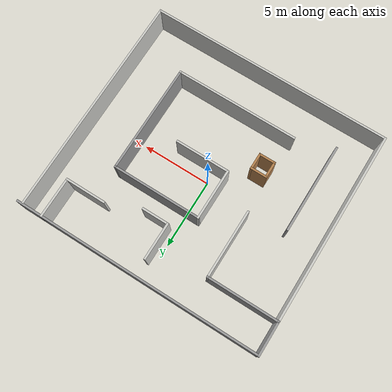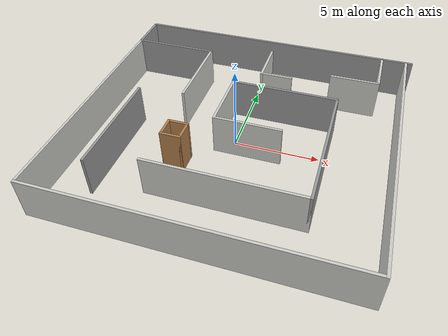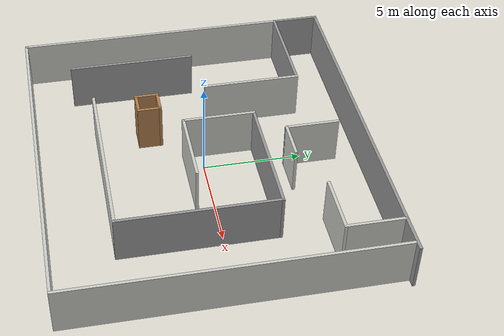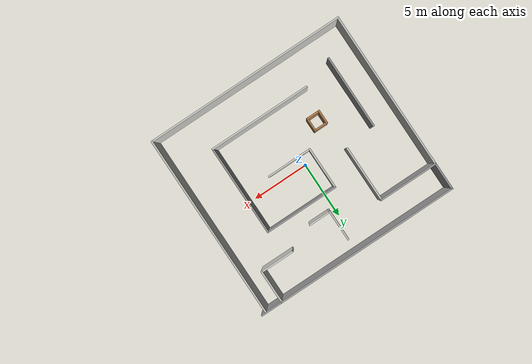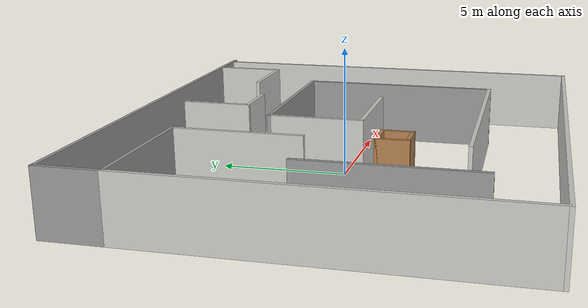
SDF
<?xml version='1.0'?>
<sdf version='1.6'>
  <model name='my_world'>
    <pose frame=''>0.400008 -0.167855 0 0 -0 0</pose>
    <link name='Wall_0'>
      <collision name='Wall_0_Collision'>
        <geometry>
          <box>
            <size>9 0.15 2.5</size>
          </box>
        </geometry>
        <pose frame=''>0 0 1.25 0 -0 0</pose>
      </collision>
      <visual name='Wall_0_Visual'>
        <pose frame=''>0 0 1.25 0 -0 0</pose>
        <geometry>
          <box>
            <size>9 0.15 2.5</size>
          </box>
        </geometry>
        <material>
          <script>
            <uri>file://media/materials/scripts/gazebo.material</uri>
            <name>Gazebo/CeilingTiled</name>
          </script>
          <ambient>1 1 1 1</ambient>
        </material>
        <meta>
          <layer>0</layer>
        </meta>
      </visual>
      <pose frame=''>0.544992 -4.95214 0 0 -0 0</pose>
    </link>
    <link name='Wall_1'>
      <collision name='Wall_1_Collision'>
        <geometry>
          <box>
            <size>8 0.15 2.5</size>
          </box>
        </geometry>
        <pose frame=''>0 0 1.25 0 -0 0</pose>
      </collision>
      <visual name='Wall_1_Visual'>
        <pose frame=''>0 0 1.25 0 -0 0</pose>
        <geometry>
          <box>
            <size>8 0.15 2.5</size>
          </box>
        </geometry>
        <material>
          <script>
            <uri>file://media/materials/scripts/gazebo.material</uri>
            <name>Gazebo/Grey</name>
          </script>
          <ambient>1 1 1 1</ambient>
        </material>
        <meta>
          <layer>0</layer>
        </meta>
      </visual>
      <pose frame=''>4.96999 -1.02714 0 0 -0 1.5708</pose>
    </link>
    <link name='Wall_10'>
      <collision name='Wall_10_Collision'>
        <geometry>
          <box>
            <size>5.25 0.15 2.5</size>
          </box>
        </geometry>
        <pose frame=''>0 0 1.25 0 -0 0</pose>
      </collision>
      <visual name='Wall_10_Visual'>
        <pose frame=''>0 0 1.25 0 -0 0</pose>
        <geometry>
          <box>
            <size>5.25 0.15 2.5</size>
          </box>
        </geometry>
        <material>
          <script>
            <uri>file://media/materials/scripts/gazebo.material</uri>
            <name>Gazebo/Grey</name>
          </script>
          <ambient>1 1 1 1</ambient>
        </material>
        <meta>
          <layer>0</layer>
        </meta>
      </visual>
      <pose frame=''>-6.425 5.75 0 0 -0 0</pose>
    </link>
    <link name='Wall_11'>
      <collision name='Wall_11_Collision'>
        <geometry>
          <box>
            <size>5 0.15 2.5</size>
          </box>
        </geometry>
        <pose frame=''>0 0 1.25 0 -0 0</pose>
      </collision>
      <visual name='Wall_11_Visual'>
        <pose frame=''>0 0 1.25 0 -0 0</pose>
        <geometry>
          <box>
            <size>5 0.15 2.5</size>
          </box>
        </geometry>
        <material>
          <script>
            <uri>file://media/materials/scripts/gazebo.material</uri>
            <name>Gazebo/CeilingTiled</name>
          </script>
          <ambient>1 1 1 1</ambient>
        </material>
        <meta>
          <layer>0</layer>
        </meta>
      </visual>
      <pose frame=''>-3.875 3.325 0 0 -0 -1.5708</pose>
    </link>
    <link name='Wall_13'>
      <collision name='Wall_13_Collision'>
        <geometry>
          <box>
            <size>6.5 0.15 2.5</size>
          </box>
        </geometry>
        <pose frame=''>0 0 1.25 0 -0 0</pose>
      </collision>
      <visual name='Wall_13_Visual'>
        <pose frame=''>0 0 1.25 0 -0 0</pose>
        <geometry>
          <box>
            <size>6.5 0.15 2.5</size>
          </box>
        </geometry>
        <material>
          <script>
            <uri>file://media/materials/scripts/gazebo.material</uri>
            <name>Gazebo/Grey</name>
          </script>
          <ambient>1 1 1 1</ambient>
        </material>
        <meta>
          <layer>0</layer>
        </meta>
      </visual>
      <pose frame=''>-6.59515 -2.64286 0 0 -0 -1.5708</pose>
    </link>
    <link name='Wall_16'>
      <collision name='Wall_16_Collision'>
        <geometry>
          <box>
            <size>2.5 0.15 2.5</size>
          </box>
        </geometry>
        <pose frame=''>0 0 1.25 0 -0 0</pose>
      </collision>
      <visual name='Wall_16_Visual'>
        <pose frame=''>0 0 1.25 0 -0 0</pose>
        <geometry>
          <box>
            <size>2.5 0.15 2.5</size>
          </box>
        </geometry>
        <material>
          <script>
            <uri>file://media/materials/scripts/gazebo.material</uri>
            <name>Gazebo/Grey</name>
          </script>
          <ambient>1 1 1 1</ambient>
        </material>
        <meta>
          <layer>0</layer>
        </meta>
      </visual>
      <pose frame=''>-8.975 6.925 0 0 -0 1.5708</pose>
    </link>
    <link name='Wall_17'>
      <collision name='Wall_17_Collision'>
        <geometry>
          <box>
            <size>16.25 0.15 2.5</size>
          </box>
        </geometry>
        <pose frame=''>0 0 1.25 0 -0 0</pose>
      </collision>
      <visual name='Wall_17_Visual'>
        <pose frame=''>0 0 1.25 0 -0 0</pose>
        <geometry>
          <box>
            <size>16.25 0.15 2.5</size>
          </box>
        </geometry>
        <material>
          <script>
            <uri>file://media/materials/scripts/gazebo.material</uri>
            <name>Gazebo/Grey</name>
          </script>
          <ambient>1 1 1 1</ambient>
        </material>
        <meta>
          <layer>0</layer>
        </meta>
      </visual>
      <pose frame=''>-0.925 8.1 0 0 -0 0</pose>
    </link>
    <link name='Wall_18'>
      <collision name='Wall_18_Collision'>
        <geometry>
          <box>
            <size>3 0.15 2.5</size>
          </box>
        </geometry>
        <pose frame=''>0 0 1.25 0 -0 0</pose>
      </collision>
      <visual name='Wall_18_Visual'>
        <pose frame=''>0 0 1.25 0 -0 0</pose>
        <geometry>
          <box>
            <size>3 0.15 2.5</size>
          </box>
        </geometry>
        <material>
          <script>
            <uri>file://media/materials/scripts/gazebo.material</uri>
            <name>Gazebo/CeilingTiled</name>
          </script>
          <ambient>1 1 1 1</ambient>
        </material>
        <meta>
          <layer>0</layer>
        </meta>
      </visual>
      <pose frame=''>7.125 6.675 0 0 -0 -1.5708</pose>
    </link>
    <link name='Wall_19'>
      <collision name='Wall_19_Collision'>
        <geometry>
          <box>
            <size>3 0.15 2.5</size>
          </box>
        </geometry>
        <pose frame=''>0 0 1.25 0 -0 0</pose>
      </collision>
      <visual name='Wall_19_Visual'>
        <pose frame=''>0 0 1.25 0 -0 0</pose>
        <geometry>
          <box>
            <size>3 0.15 2.5</size>
          </box>
        </geometry>
        <material>
          <script>
            <uri>file://media/materials/scripts/gazebo.material</uri>
            <name>Gazebo/CeilingTiled</name>
          </script>
          <ambient>1 1 1 1</ambient>
        </material>
        <meta>
          <layer>0</layer>
        </meta>
      </visual>
      <pose frame=''>5.7 5.25 0 0 -0 3.14159</pose>
    </link>
    <link name='Wall_21'>
      <collision name='Wall_21_Collision'>
        <geometry>
          <box>
            <size>16.25 0.15 2.5</size>
          </box>
        </geometry>
        <pose frame=''>0 0 1.25 0 -0 0</pose>
      </collision>
      <visual name='Wall_21_Visual'>
        <pose frame=''>0 0 1.25 0 -0 0</pose>
        <geometry>
          <box>
            <size>16.25 0.15 2.5</size>
          </box>
        </geometry>
        <material>
          <script>
            <uri>file://media/materials/scripts/gazebo.material</uri>
            <name>Gazebo/CeilingTiled</name>
          </script>
          <ambient>1 1 1 1</ambient>
        </material>
        <meta>
          <layer>0</layer>
        </meta>
      </visual>
      <pose frame=''>8.625 -0.049999 0 0 -0 1.5708</pose>
    </link>
    <link name='Wall_23'>
      <collision name='Wall_23_Collision'>
        <geometry>
          <box>
            <size>2 0.15 2.5</size>
          </box>
        </geometry>
        <pose frame=''>0 0 1.25 0 -0 0</pose>
      </collision>
      <visual name='Wall_23_Visual'>
        <pose frame=''>0 0 1.25 0 -0 0</pose>
        <geometry>
          <box>
            <size>2 0.15 2.5</size>
          </box>
        </geometry>
        <material>
          <script>
            <uri>file://media/materials/scripts/gazebo.material</uri>
            <name>Gazebo/Grey</name>
          </script>
          <ambient>1 1 1 1</ambient>
        </material>
        <meta>
          <layer>0</layer>
        </meta>
      </visual>
      <pose frame=''>8.05 8.1 0 0 -0 0</pose>
    </link>
    <link name='Wall_25'>
      <collision name='Wall_25_Collision'>
        <geometry>
          <box>
            <size>2.75 0.15 2.5</size>
          </box>
        </geometry>
        <pose frame=''>0 0 1.25 0 -0 0</pose>
      </collision>
      <visual name='Wall_25_Visual'>
        <pose frame=''>0 0 1.25 0 -0 0</pose>
        <geometry>
          <box>
            <size>2.75 0.15 2.5</size>
          </box>
        </geometry>
        <material>
          <script>
            <uri>file://media/materials/scripts/gazebo.material</uri>
            <name>Gazebo/CeilingTiled</name>
          </script>
          <ambient>1 1 1 1</ambient>
        </material>
        <meta>
          <layer>0</layer>
        </meta>
      </visual>
      <pose frame=''>0.04002 5.56453 0 0 -0 -1.5708</pose>
    </link>
    <link name='Wall_26'>
      <collision name='Wall_26_Collision'>
        <geometry>
          <box>
            <size>2 0.15 2.5</size>
          </box>
        </geometry>
        <pose frame=''>0 0 1.25 0 -0 0</pose>
      </collision>
      <visual name='Wall_26_Visual'>
        <pose frame=''>0 0 1.25 0 -0 0</pose>
        <geometry>
          <box>
            <size>2 0.15 2.5</size>
          </box>
        </geometry>
        <material>
          <script>
            <uri>file://media/materials/scripts/gazebo.material</uri>
            <name>Gazebo/CeilingTiled</name>
          </script>
          <ambient>1 1 1 1</ambient>
        </material>
        <meta>
          <layer>0</layer>
        </meta>
      </visual>
      <pose frame=''>0.96502 4.26453 0 0 -0 0</pose>
    </link>
    <link name='Wall_28'>
      <collision name='Wall_28_Collision'>
        <geometry>
          <box>
            <size>1.25 0.15 2.5</size>
          </box>
        </geometry>
        <pose frame=''>0 0 1.25 0 -0 0</pose>
      </collision>
      <visual name='Wall_28_Visual'>
        <pose frame=''>0 0 1.25 0 -0 0</pose>
        <geometry>
          <box>
            <size>1.25 0.15 2.5</size>
          </box>
        </geometry>
        <material>
          <script>
            <uri>file://media/materials/scripts/gazebo.material</uri>
            <name>Gazebo/Wood</name>
          </script>
          <ambient>1 1 1 1</ambient>
        </material>
        <meta>
          <layer>0</layer>
        </meta>
      </visual>
      <pose frame=''>-3.6614 -2.25073 0 0 -0 -1.5708</pose>
    </link>
    <link name='Wall_29'>
      <collision name='Wall_29_Collision'>
        <geometry>
          <box>
            <size>1.25 0.15 2.5</size>
          </box>
        </geometry>
        <pose frame=''>0 0 1.25 0 -0 0</pose>
      </collision>
      <visual name='Wall_29_Visual'>
        <pose frame=''>0 0 1.25 0 -0 0</pose>
        <geometry>
          <box>
            <size>1.25 0.15 2.5</size>
          </box>
        </geometry>
        <material>
          <script>
            <uri>file://media/materials/scripts/gazebo.material</uri>
            <name>Gazebo/Wood</name>
          </script>
          <ambient>1 1 1 1</ambient>
        </material>
        <meta>
          <layer>0</layer>
        </meta>
      </visual>
      <pose frame=''>-3.1114 -2.80073 0 0 -0 0</pose>
    </link>
    <link name='Wall_3'>
      <collision name='Wall_3_Collision'>
        <geometry>
          <box>
            <size>6.5 0.15 2.5</size>
          </box>
        </geometry>
        <pose frame=''>0 0 1.25 0 -0 0</pose>
      </collision>
      <visual name='Wall_3_Visual'>
        <pose frame=''>0 0 1.25 0 -0 0</pose>
        <geometry>
          <box>
            <size>6.5 0.15 2.5</size>
          </box>
        </geometry>
        <material>
          <script>
            <uri>file://media/materials/scripts/gazebo.material</uri>
            <name>Gazebo/Grey</name>
          </script>
          <ambient>1 1 1 1</ambient>
        </material>
        <meta>
          <layer>0</layer>
        </meta>
      </visual>
      <pose frame=''>1.79499 2.89785 0 0 -0 3.14159</pose>
    </link>
    <link name='Wall_30'>
      <collision name='Wall_30_Collision'>
        <geometry>
          <box>
            <size>1.25 0.15 2.5</size>
          </box>
        </geometry>
        <pose frame=''>0 0 1.25 0 -0 0</pose>
      </collision>
      <visual name='Wall_30_Visual'>
        <pose frame=''>0 0 1.25 0 -0 0</pose>
        <geometry>
          <box>
            <size>1.25 0.15 2.5</size>
          </box>
        </geometry>
        <material>
          <script>
            <uri>file://media/materials/scripts/gazebo.material</uri>
            <name>Gazebo/Wood</name>
          </script>
          <ambient>1 1 1 1</ambient>
        </material>
        <meta>
          <layer>0</layer>
        </meta>
      </visual>
      <pose frame=''>-2.5614 -2.25073 0 0 -0 1.5708</pose>
    </link>
    <link name='Wall_31'>
      <collision name='Wall_31_Collision'>
        <geometry>
          <box>
            <size>1.25 0.15 2.5</size>
          </box>
        </geometry>
        <pose frame=''>0 0 1.25 0 -0 0</pose>
      </collision>
      <visual name='Wall_31_Visual'>
        <pose frame=''>0 0 1.25 0 -0 0</pose>
        <geometry>
          <box>
            <size>1.25 0.15 2.5</size>
          </box>
        </geometry>
        <material>
          <script>
            <uri>file://media/materials/scripts/gazebo.material</uri>
            <name>Gazebo/Wood</name>
          </script>
          <ambient>1 1 1 1</ambient>
        </material>
        <meta>
          <layer>0</layer>
        </meta>
      </visual>
      <pose frame=''>-3.1114 -1.70073 0 0 -0 3.14159</pose>
    </link>
    <link name='Wall_4'>
      <collision name='Wall_4_Collision'>
        <geometry>
          <box>
            <size>3.75 0.15 2.5</size>
          </box>
        </geometry>
        <pose frame=''>0 0 1.25 0 -0 0</pose>
      </collision>
      <visual name='Wall_4_Visual'>
        <pose frame=''>0 0 1.25 0 -0 0</pose>
        <geometry>
          <box>
            <size>3.75 0.15 2.5</size>
          </box>
        </geometry>
        <material>
          <script>
            <uri>file://media/materials/scripts/gazebo.material</uri>
            <name>Gazebo/CeilingTiled</name>
          </script>
          <ambient>1 1 1 1</ambient>
        </material>
        <meta>
          <layer>0</layer>
        </meta>
      </visual>
      <pose frame=''>-1.38001 1.09786 0 0 -0 -1.5708</pose>
    </link>
    <link name='Wall_5'>
      <collision name='Wall_5_Collision'>
        <geometry>
          <box>
            <size>4 0.15 2.5</size>
          </box>
        </geometry>
        <pose frame=''>0 0 1.25 0 -0 0</pose>
      </collision>
      <visual name='Wall_5_Visual'>
        <pose frame=''>0 0 1.25 0 -0 0</pose>
        <geometry>
          <box>
            <size>4 0.15 2.5</size>
          </box>
        </geometry>
        <material>
          <script>
            <uri>file://media/materials/scripts/gazebo.material</uri>
            <name>Gazebo/CeilingTiled</name>
          </script>
          <ambient>1 1 1 1</ambient>
        </material>
        <meta>
          <layer>0</layer>
        </meta>
      </visual>
      <pose frame=''>0.544992 -0.702145 0 0 -0 0</pose>
    </link>
    <link name='Wall_7'>
      <collision name='Wall_7_Collision'>
        <geometry>
          <box>
            <size>17.75 0.15 2.5</size>
          </box>
        </geometry>
        <pose frame=''>0 0 1.25 0 -0 0</pose>
      </collision>
      <visual name='Wall_7_Visual'>
        <pose frame=''>0 0 1.25 0 -0 0</pose>
        <geometry>
          <box>
            <size>17.75 0.15 2.5</size>
          </box>
        </geometry>
        <material>
          <script>
            <uri>file://media/materials/scripts/gazebo.material</uri>
            <name>Gazebo/CeilingTiled</name>
          </script>
          <ambient>1 1 1 1</ambient>
        </material>
        <meta>
          <layer>0</layer>
        </meta>
      </visual>
      <pose frame=''>-0.175 -8.1 0 0 -0 0</pose>
    </link>
    <link name='Wall_9'>
      <collision name='Wall_9_Collision'>
        <geometry>
          <box>
            <size>14 0.15 2.5</size>
          </box>
        </geometry>
        <pose frame=''>0 0 1.25 0 -0 0</pose>
      </collision>
      <visual name='Wall_9_Visual'>
        <pose frame=''>0 0 1.25 0 -0 0</pose>
        <geometry>
          <box>
            <size>14 0.15 2.5</size>
          </box>
        </geometry>
        <material>
          <script>
            <uri>file://media/materials/scripts/gazebo.material</uri>
            <name>Gazebo/CeilingTiled</name>
          </script>
          <ambient>1 1 1 1</ambient>
        </material>
        <meta>
          <layer>0</layer>
        </meta>
      </visual>
      <pose frame=''>-8.975 -1.175 0 0 -0 1.5708</pose>
    </link>
    <static>1</static>
  </model>
</sdf>
